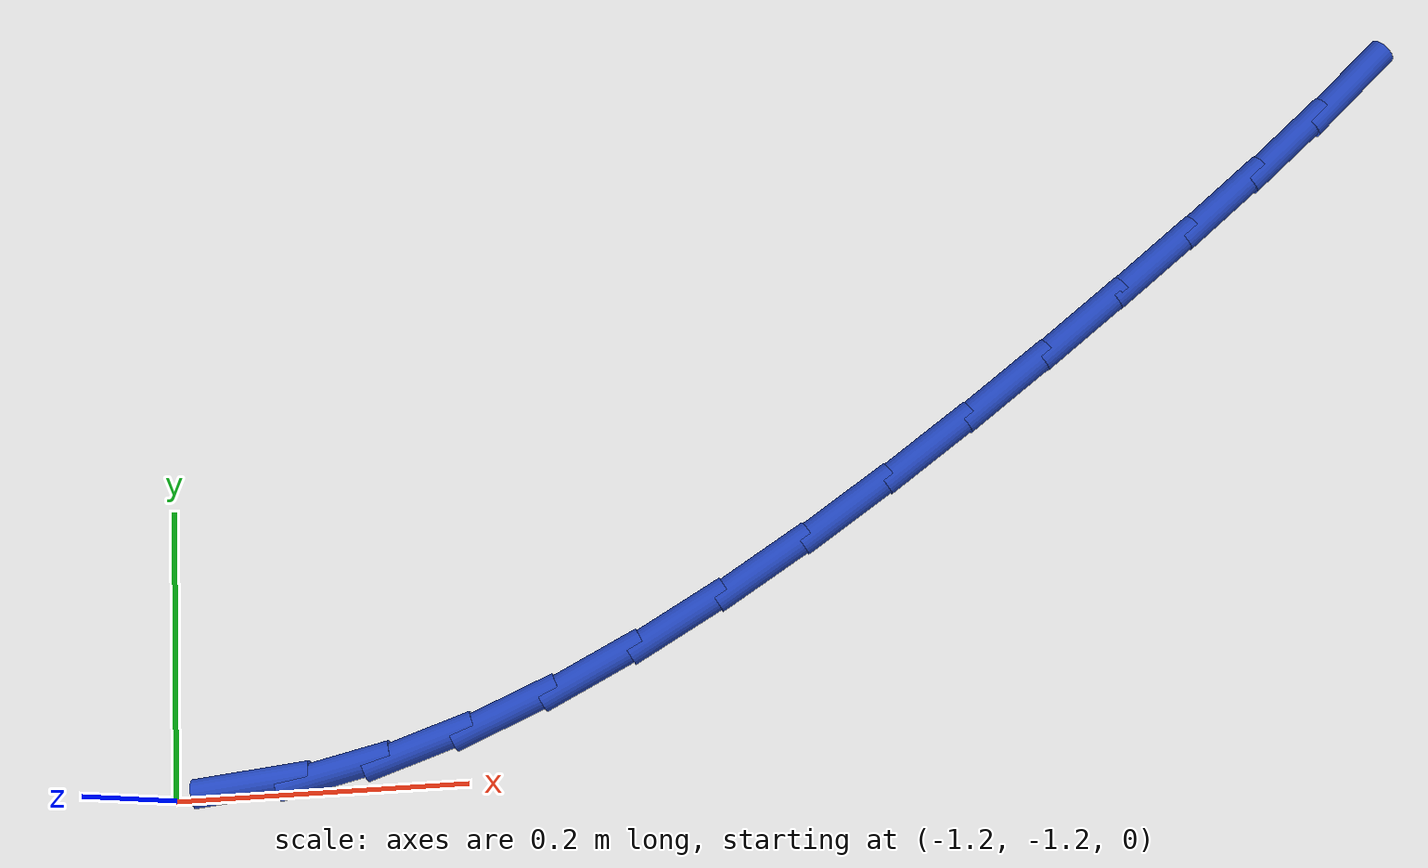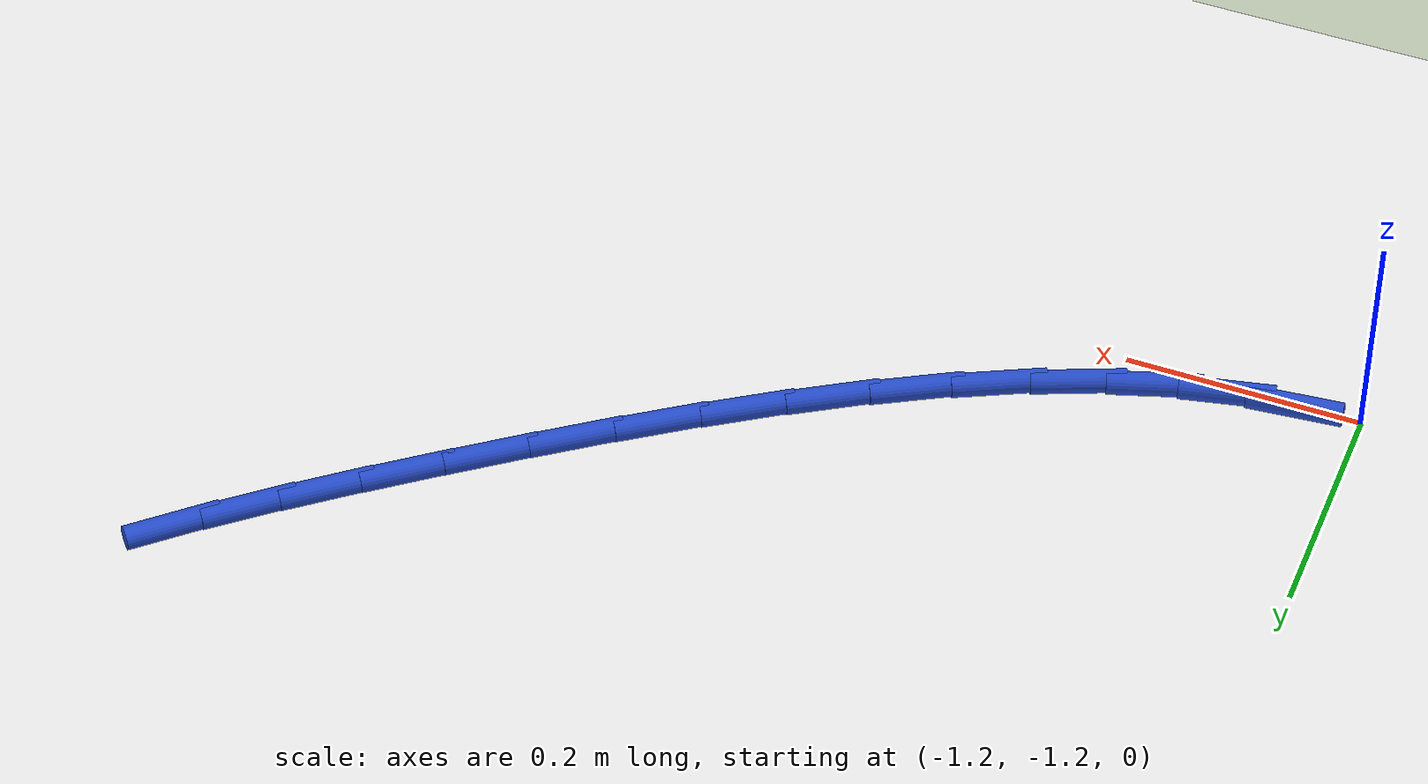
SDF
<sdf version="1.6">
 <world name="default">
  <model name="ground_plane">
   <static>1</static>
   <link name="link">
    <collision name="collision">
     <geometry><plane><normal>0 0 1</normal><size>100 100</size></plane></geometry>
     <surface><friction><ode><mu>100</mu><mu2>50</mu2></ode></friction></surface>
    </collision>
    <visual name="visual">
     <cast_shadows>0</cast_shadows>
     <geometry><plane><normal>0 0 1</normal><size>100 100</size></plane></geometry>
     <material>
      <script><uri>file://media/materials/scripts/gazebo.material</uri><name>Gazebo/WhiteGlow</name></script>
     </material>
    </visual>
   </link>
  </model>
  <model name="line">
   <link name="link_92">
    <pose>-1.1459332180036306 -1.1916787565137192 0.01 0 1.57 0.09944399233669297</pose>
    <collision name="collision">
     <geometry><cylinder><radius>0.01</radius><length>0.08</length></cylinder></geometry>
    </collision>
    <visual name="visual">
     <material>
      <script><name>Gazebo/Blue</name><uri>file://media/materials/scripts/gazebo.material</uri></script>
     </material>
     <geometry><cylinder><radius>0.01</radius><length>0.08</length></cylinder></geometry>
    </visual>
   </link>
   <link name="link_93">
    <pose>-1.0896430528569783 -1.1860625123310944 0.01 0 1.57 0.21899056840318512</pose>
    <collision name="collision">
     <geometry><cylinder><radius>0.01</radius><length>0.08</length></cylinder></geometry>
    </collision>
    <visual name="visual">
     <material>
      <script><name>Gazebo/Blue</name><uri>file://media/materials/scripts/gazebo.material</uri></script>
     </material>
     <geometry><cylinder><radius>0.01</radius><length>0.08</length></cylinder></geometry>
    </visual>
   </link>
   <link name="link_94">
    <pose>-1.0315982245874005 -1.1731440697766644 0.01 0 1.57 0.315637267126785</pose>
    <collision name="collision">
     <geometry><cylinder><radius>0.01</radius><length>0.08</length></cylinder></geometry>
    </collision>
    <visual name="visual">
     <material>
      <script><name>Gazebo/Blue</name><uri>file://media/materials/scripts/gazebo.material</uri></script>
     </material>
     <geometry><cylinder><radius>0.01</radius><length>0.08</length></cylinder></geometry>
    </visual>
   </link>
   <link name="link_95">
    <pose>-0.9722125045077213 -1.1537513943967874 0.01 0 1.57 0.393499062550381</pose>
    <collision name="collision">
     <geometry><cylinder><radius>0.01</radius><length>0.08</length></cylinder></geometry>
    </collision>
    <visual name="visual">
     <material>
      <script><name>Gazebo/Blue</name><uri>file://media/materials/scripts/gazebo.material</uri></script>
     </material>
     <geometry><cylinder><radius>0.01</radius><length>0.08</length></cylinder></geometry>
    </visual>
   </link>
   <link name="link_96">
    <pose>-0.9118996639307659 -1.12871245173782 0.01 0 1.57 0.45631024653472013</pose>
    <collision name="collision">
     <geometry><cylinder><radius>0.01</radius><length>0.08</length></cylinder></geometry>
    </collision>
    <visual name="visual">
     <material>
      <script><name>Gazebo/Blue</name><uri>file://media/materials/scripts/gazebo.material</uri></script>
     </material>
     <geometry><cylinder><radius>0.01</radius><length>0.08</length></cylinder></geometry>
    </visual>
   </link>
   <link name="link_97">
    <pose>-0.8510734741693613 -1.0988552073461209 0.01 0 1.57 0.5070976501723456</pose>
    <collision name="collision">
     <geometry><cylinder><radius>0.01</radius><length>0.08</length></cylinder></geometry>
    </collision>
    <visual name="visual">
     <material>
      <script><name>Gazebo/Blue</name><uri>file://media/materials/scripts/gazebo.material</uri></script>
     </material>
     <geometry><cylinder><radius>0.01</radius><length>0.08</length></cylinder></geometry>
    </visual>
   </link>
   <link name="link_98">
    <pose>-0.7901477065363328 -1.065007626768047 0.01 0 1.57 0.5481834805180716</pose>
    <collision name="collision">
     <geometry><cylinder><radius>0.01</radius><length>0.08</length></cylinder></geometry>
    </collision>
    <visual name="visual">
     <material>
      <script><name>Gazebo/Blue</name><uri>file://media/materials/scripts/gazebo.material</uri></script>
     </material>
     <geometry><cylinder><radius>0.01</radius><length>0.08</length></cylinder></geometry>
    </visual>
   </link>
   <link name="link_99">
    <pose>-0.7295361323445054 -1.0279976755499565 0.01 0 1.57 0.5812900271923765</pose>
    <collision name="collision">
     <geometry><cylinder><radius>0.01</radius><length>0.08</length></cylinder></geometry>
    </collision>
    <visual name="visual">
     <material>
      <script><name>Gazebo/Blue</name><uri>file://media/materials/scripts/gazebo.material</uri></script>
     </material>
     <geometry><cylinder><radius>0.01</radius><length>0.08</length></cylinder></geometry>
    </visual>
   </link>
   <link name="link_100">
    <pose>-0.6696525229067045 -0.9886533192382065 0.01 0 1.57 0.6076515133418773</pose>
    <collision name="collision">
     <geometry><cylinder><radius>0.01</radius><length>0.08</length></cylinder></geometry>
    </collision>
    <visual name="visual">
     <material>
      <script><name>Gazebo/Blue</name><uri>file://media/materials/scripts/gazebo.material</uri></script>
     </material>
     <geometry><cylinder><radius>0.01</radius><length>0.08</length></cylinder></geometry>
    </visual>
   </link>
   <link name="link_101">
    <pose>-0.610910649535757 -0.9478025233791557 0.01 0 1.57 0.6281003846490119</pose>
    <collision name="collision">
     <geometry><cylinder><radius>0.01</radius><length>0.08</length></cylinder></geometry>
    </collision>
    <visual name="visual">
     <material>
      <script><name>Gazebo/Blue</name><uri>file://media/materials/scripts/gazebo.material</uri></script>
     </material>
     <geometry><cylinder><radius>0.01</radius><length>0.08</length></cylinder></geometry>
    </visual>
   </link>
   <link name="link_102">
    <pose>-0.553724283544488 -0.9062732535191611 0.01 0 1.57 0.6431181216471141</pose>
    <collision name="collision">
     <geometry><cylinder><radius>0.01</radius><length>0.08</length></cylinder></geometry>
    </collision>
    <visual name="visual">
     <material>
      <script><name>Gazebo/Blue</name><uri>file://media/materials/scripts/gazebo.material</uri></script>
     </material>
     <geometry><cylinder><radius>0.01</radius><length>0.08</length></cylinder></geometry>
    </visual>
   </link>
   <link name="link_103">
    <pose>-0.4985071951093669 -0.8648934705732897 0.01 0 1.57 0.6551619064828147</pose>
    <collision name="collision">
     <geometry><cylinder><radius>0.01</radius><length>0.08</length></cylinder></geometry>
    </collision>
    <visual name="visual">
     <material>
      <script><name>Gazebo/Blue</name><uri>file://media/materials/scripts/gazebo.material</uri></script>
     </material>
     <geometry><cylinder><radius>0.01</radius><length>0.08</length></cylinder></geometry>
    </visual>
   </link>
   <link name="link_104">
    <pose>-0.4456143826447403 -0.8242516073634303 0.01 0 1.57 0.672968608562629</pose>
    <collision name="collision">
     <geometry><cylinder><radius>0.01</radius><length>0.08</length></cylinder></geometry>
    </collision>
    <visual name="visual">
     <material>
      <script><name>Gazebo/Blue</name><uri>file://media/materials/scripts/gazebo.material</uri></script>
     </material>
     <geometry><cylinder><radius>0.01</radius><length>0.08</length></cylinder></geometry>
    </visual>
   </link>
   <link name="link_105">
    <pose>-0.39518440977391034 -0.7840540028125734 0.01 0 1.57 0.6990536700782692</pose>
    <collision name="collision">
     <geometry><cylinder><radius>0.01</radius><length>0.08</length></cylinder></geometry>
    </collision>
    <visual name="visual">
     <material>
      <script><name>Gazebo/Blue</name><uri>file://media/materials/scripts/gazebo.material</uri></script>
     </material>
     <geometry><cylinder><radius>0.01</radius><length>0.08</length></cylinder></geometry>
    </visual>
   </link>
   <link name="link_106">
    <pose>-0.34730602991027754 -0.74380399113248 0.01 0 1.57 0.7338504526598703</pose>
    <collision name="collision">
     <geometry><cylinder><radius>0.01</radius><length>0.08</length></cylinder></geometry>
    </collision>
    <visual name="visual">
     <material>
      <script><name>Gazebo/Blue</name><uri>file://media/materials/scripts/gazebo.material</uri></script>
     </material>
     <geometry><cylinder><radius>0.01</radius><length>0.08</length></cylinder></geometry>
    </visual>
   </link>
  </model>
 </world>
</sdf>
